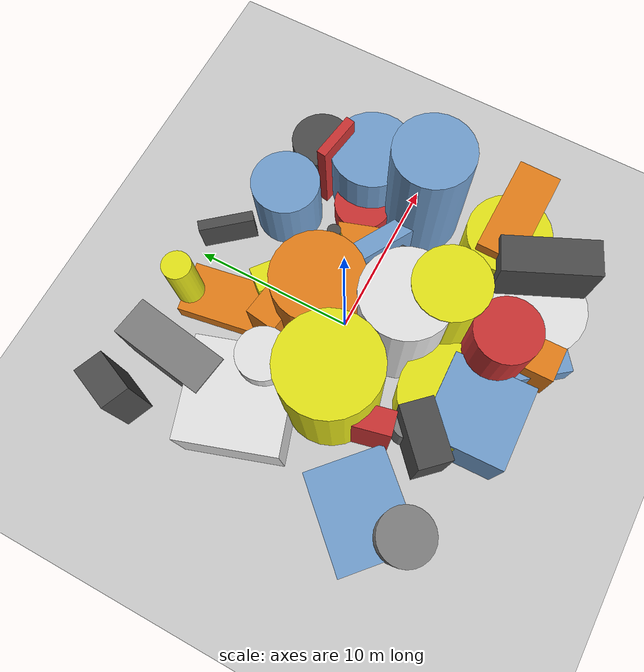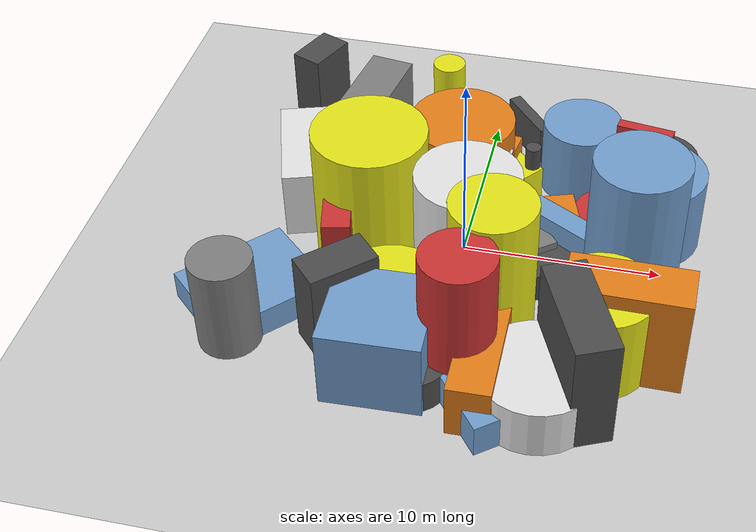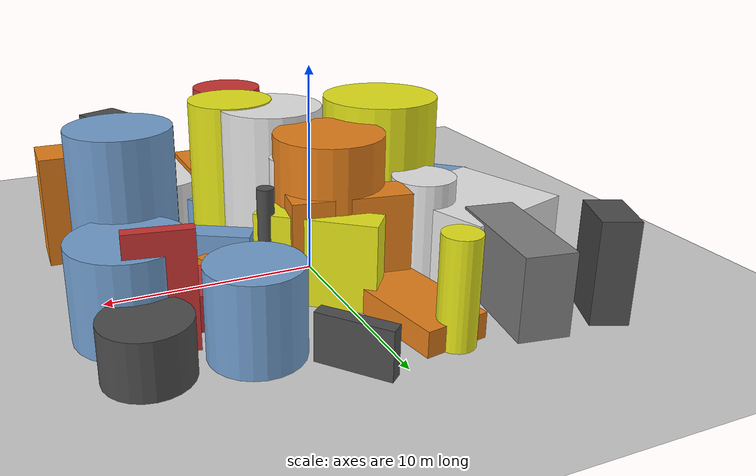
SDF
<?xml version='1.0'?>
<sdf version='1.6'>
  <world name='default'>
    <!-- Sun light -->
    <light name='sun' type='directional'>
      <cast_shadows>1</cast_shadows>
      <pose>0 0 10 0 0 0</pose>
      <diffuse>0.8 0.8 0.8 1</diffuse>
      <specular>0.2 0.2 0.2 1</specular>
      <attenuation>
        <range>1000</range>
        <constant>0.9</constant>
        <linear>0.01</linear>
        <quadratic>0.001</quadratic>
      </attenuation>
      <direction>-0.5 0.1 -0.9</direction>
    </light>

    <!-- Ground plane -->
    <model name='ground_plane'>
      <static>1</static>
      <link name='link'>
        <collision name='collision'>
          <geometry>
            <plane>
              <normal>0 0 1</normal>
              <size>100 100</size>
            </plane>
          </geometry>
          <surface>
            <contact>
              <collide_bitmask>65535</collide_bitmask>
              <ode/>
            </contact>
            <friction>
              <ode>
                <mu>100</mu>
                <mu2>50</mu2>
              </ode>
              <torsional><ode/></torsional>
            </friction>
            <bounce/>
          </surface>
          <max_contacts>10</max_contacts>
        </collision>
        <visual name='visual'>
          <cast_shadows>0</cast_shadows>
          <geometry>
            <plane>
              <normal>0 0 1</normal>
              <size>100 100</size>
            </plane>
          </geometry>
          <material>
            <script>
              <uri>file://media/materials/scripts/gazebo.material</uri>
              <n>Gazebo/Grey</n>
            </script>
          </material>
        </visual>
      </link>
    </model>

    <!-- Environment -->
    <magnetic_field>6e-06 2.3e-05 -4.2e-05</magnetic_field>
    <atmosphere type='adiabatic'/>
    <physics name='default_physics' default='0' type='ode'>
      <gravity>0 0 -9.8</gravity>
      <max_step_size>0.004</max_step_size>
      <real_time_factor>1</real_time_factor>
      <real_time_update_rate>250</real_time_update_rate>
    </physics>
    <scene>
      <ambient>0.4 0.4 0.4 1</ambient>
      <background>0.7 0.7 0.7 1</background>
      <shadows>1</shadows>
    </scene>
    <wind/>
    <spherical_coordinates>
      <surface_model>EARTH_WGS84</surface_model>
      <latitude_deg>0</latitude_deg>
      <longitude_deg>0</longitude_deg>
      <elevation>0</elevation>
      <heading_deg>0</heading_deg>
    </spherical_coordinates>

    <!-- ============ OBSTACLES (46) ============ -->
    <model name='obs_00'>
      <static>1</static>
      <link name='link'>
        <visual name='visual'>
          <geometry>
            <box>
              <size>2.3471 5.8341 3.8289</size>
            </box>
          </geometry>
          <material>
            <script>
              <n>Gazebo/Grey</n>
              <uri>file://media/materials/scripts/gazebo.material</uri>
            </script>
            <ambient>0.5 0.5 0.5 1</ambient>
          </material>
        </visual>
        <collision name='collision'>
          <geometry>
            <box>
              <size>2.3471 5.8341 3.8289</size>
            </box>
          </geometry>
          <max_contacts>10</max_contacts>
          <surface>
            <contact><ode/></contact>
            <bounce/>
            <friction>
              <ode><mu>1</mu><mu2>1</mu2></ode>
              <torsional><ode/></torsional>
            </friction>
          </surface>
        </collision>
      </link>
      <pose>-6.6286 7.3587 1.9145 0 0 2.9891</pose>
    </model>

    <model name='obs_01'>
      <static>1</static>
      <link name='link'>
        <visual name='visual'>
          <geometry>
            <cylinder>
              <radius>0.3870</radius>
              <length>5.3114</length>
            </cylinder>
          </geometry>
          <material>
            <script>
              <n>Gazebo/DarkGrey</n>
              <uri>file://media/materials/scripts/gazebo.material</uri>
            </script>
            <ambient>0.3 0.3 0.3 1</ambient>
          </material>
        </visual>
        <collision name='collision'>
          <geometry>
            <cylinder>
              <radius>0.3870</radius>
              <length>5.3114</length>
            </cylinder>
          </geometry>
          <max_contacts>10</max_contacts>
          <surface>
            <contact><ode/></contact>
            <bounce/>
            <friction>
              <ode><mu>1</mu><mu2>1</mu2></ode>
              <torsional><ode/></torsional>
            </friction>
          </surface>
        </collision>
      </link>
      <pose>3.0119 2.2461 2.6557 0 0 0.6687</pose>
    </model>

    <model name='obs_02'>
      <static>1</static>
      <link name='link'>
        <visual name='visual'>
          <geometry>
            <cylinder>
              <radius>2.8653</radius>
              <length>2.6206</length>
            </cylinder>
          </geometry>
          <material>
            <script>
              <n>Gazebo/White</n>
              <uri>file://media/materials/scripts/gazebo.material</uri>
            </script>
            <ambient>0.9 0.9 0.9 1</ambient>
          </material>
        </visual>
        <collision name='collision'>
          <geometry>
            <cylinder>
              <radius>2.8653</radius>
              <length>2.6206</length>
            </cylinder>
          </geometry>
          <max_contacts>10</max_contacts>
          <surface>
            <contact><ode/></contact>
            <bounce/>
            <friction>
              <ode><mu>1</mu><mu2>1</mu2></ode>
              <torsional><ode/></torsional>
            </friction>
          </surface>
        </collision>
      </link>
      <pose>5.2862 -9.7326 1.3103 0 0 0.0243</pose>
    </model>

    <model name='obs_03'>
      <static>1</static>
      <link name='link'>
        <visual name='visual'>
          <geometry>
            <cylinder>
              <radius>1.9136</radius>
              <length>1.5641</length>
            </cylinder>
          </geometry>
          <material>
            <script>
              <n>Gazebo/DarkGrey</n>
              <uri>file://media/materials/scripts/gazebo.material</uri>
            </script>
            <ambient>0.3 0.3 0.3 1</ambient>
          </material>
        </visual>
        <collision name='collision'>
          <geometry>
            <cylinder>
              <radius>1.9136</radius>
              <length>1.5641</length>
            </cylinder>
          </geometry>
          <max_contacts>10</max_contacts>
          <surface>
            <contact><ode/></contact>
            <bounce/>
            <friction>
              <ode><mu>1</mu><mu2>1</mu2></ode>
              <torsional><ode/></torsional>
            </friction>
          </surface>
        </collision>
      </link>
      <pose>3.7768 -1.1792 0.7820 0 0 2.0333</pose>
    </model>

    <model name='obs_04'>
      <static>1</static>
      <link name='link'>
        <visual name='visual'>
          <geometry>
            <cylinder>
              <radius>0.6515</radius>
              <length>2.6668</length>
            </cylinder>
          </geometry>
          <material>
            <script>
              <n>Gazebo/DarkGrey</n>
              <uri>file://media/materials/scripts/gazebo.material</uri>
            </script>
            <ambient>0.3 0.3 0.3 1</ambient>
          </material>
        </visual>
        <collision name='collision'>
          <geometry>
            <cylinder>
              <radius>0.6515</radius>
              <length>2.6668</length>
            </cylinder>
          </geometry>
          <max_contacts>10</max_contacts>
          <surface>
            <contact><ode/></contact>
            <bounce/>
            <friction>
              <ode><mu>1</mu><mu2>1</mu2></ode>
              <torsional><ode/></torsional>
            </friction>
          </surface>
        </collision>
      </link>
      <pose>-3.5903 -7.8058 1.3334 0 0 1.2509</pose>
    </model>

    <model name='obs_05'>
      <static>1</static>
      <link name='link'>
        <visual name='visual'>
          <geometry>
            <box>
              <size>2.8448 0.5791 5.2964</size>
            </box>
          </geometry>
          <material>
            <script>
              <n>Gazebo/Red</n>
              <uri>file://media/materials/scripts/gazebo.material</uri>
            </script>
            <ambient>0.8 0.2 0.2 1</ambient>
          </material>
        </visual>
        <collision name='collision'>
          <geometry>
            <box>
              <size>2.8448 0.5791 5.2964</size>
            </box>
          </geometry>
          <max_contacts>10</max_contacts>
          <surface>
            <contact><ode/></contact>
            <bounce/>
            <friction>
              <ode><mu>1</mu><mu2>1</mu2></ode>
              <torsional><ode/></torsional>
            </friction>
          </surface>
        </collision>
      </link>
      <pose>8.3150 4.9495 2.6482 0 0 2.9833</pose>
    </model>

    <model name='obs_06'>
      <static>1</static>
      <link name='link'>
        <visual name='visual'>
          <geometry>
            <cylinder>
              <radius>1.8064</radius>
              <length>7.3803</length>
            </cylinder>
          </geometry>
          <material>
            <script>
              <n>Gazebo/Red</n>
              <uri>file://media/materials/scripts/gazebo.material</uri>
            </script>
            <ambient>0.8 0.2 0.2 1</ambient>
          </material>
        </visual>
        <collision name='collision'>
          <geometry>
            <cylinder>
              <radius>1.8064</radius>
              <length>7.3803</length>
            </cylinder>
          </geometry>
          <max_contacts>10</max_contacts>
          <surface>
            <contact><ode/></contact>
            <bounce/>
            <friction>
              <ode><mu>1</mu><mu2>1</mu2></ode>
              <torsional><ode/></torsional>
            </friction>
          </surface>
        </collision>
      </link>
      <pose>1.3868 -8.4732 3.6901 0 0 2.3039</pose>
    </model>

    <model name='obs_07'>
      <static>1</static>
      <link name='link'>
        <visual name='visual'>
          <geometry>
            <box>
              <size>1.9080 3.4863 4.8302</size>
            </box>
          </geometry>
          <material>
            <script>
              <n>Gazebo/DarkGrey</n>
              <uri>file://media/materials/scripts/gazebo.material</uri>
            </script>
            <ambient>0.3 0.3 0.3 1</ambient>
          </material>
        </visual>
        <collision name='collision'>
          <geometry>
            <box>
              <size>1.9080 3.4863 4.8302</size>
            </box>
          </geometry>
          <max_contacts>10</max_contacts>
          <surface>
            <contact><ode/></contact>
            <bounce/>
            <friction>
              <ode><mu>1</mu><mu2>1</mu2></ode>
              <torsional><ode/></torsional>
            </friction>
          </surface>
        </collision>
      </link>
      <pose>-4.5793 -7.1283 2.4151 0 0 2.3236</pose>
    </model>

    <model name='obs_08'>
      <static>1</static>
      <link name='link'>
        <visual name='visual'>
          <geometry>
            <box>
              <size>5.8615 2.0772 2.8869</size>
            </box>
          </geometry>
          <material>
            <script>
              <n>Gazebo/Orange</n>
              <uri>file://media/materials/scripts/gazebo.material</uri>
            </script>
            <ambient>0.9 0.5 0.1 1</ambient>
          </material>
        </visual>
        <collision name='collision'>
          <geometry>
            <box>
              <size>5.8615 2.0772 2.8869</size>
            </box>
          </geometry>
          <max_contacts>10</max_contacts>
          <surface>
            <contact><ode/></contact>
            <bounce/>
            <friction>
              <ode><mu>1</mu><mu2>1</mu2></ode>
              <torsional><ode/></torsional>
            </friction>
          </surface>
        </collision>
      </link>
      <pose>2.5663 -9.2042 1.4435 0 0 1.5869</pose>
    </model>

    <model name='obs_09'>
      <static>1</static>
      <link name='link'>
        <visual name='visual'>
          <geometry>
            <box>
              <size>2.4498 5.7928 5.4341</size>
            </box>
          </geometry>
          <material>
            <script>
              <n>Gazebo/Orange</n>
              <uri>file://media/materials/scripts/gazebo.material</uri>
            </script>
            <ambient>0.9 0.5 0.1 1</ambient>
          </material>
        </visual>
        <collision name='collision'>
          <geometry>
            <box>
              <size>2.4498 5.7928 5.4341</size>
            </box>
          </geometry>
          <max_contacts>10</max_contacts>
          <surface>
            <contact><ode/></contact>
            <bounce/>
            <friction>
              <ode><mu>1</mu><mu2>1</mu2></ode>
              <torsional><ode/></torsional>
            </friction>
          </surface>
        </collision>
      </link>
      <pose>8.7857 -6.3315 2.7171 0 0 1.5583</pose>
    </model>

    <model name='obs_10'>
      <static>1</static>
      <link name='link'>
        <visual name='visual'>
          <geometry>
            <box>
              <size>3.9438 1.1963 2.8125</size>
            </box>
          </geometry>
          <material>
            <script>
              <n>Gazebo/Blue</n>
              <uri>file://media/materials/scripts/gazebo.material</uri>
            </script>
            <ambient>0.447 0.624 0.812 1</ambient>
          </material>
        </visual>
        <collision name='collision'>
          <geometry>
            <box>
              <size>3.9438 1.1963 2.8125</size>
            </box>
          </geometry>
          <max_contacts>10</max_contacts>
          <surface>
            <contact><ode/></contact>
            <bounce/>
            <friction>
              <ode><mu>1</mu><mu2>1</mu2></ode>
              <torsional><ode/></torsional>
            </friction>
          </surface>
        </collision>
      </link>
      <pose>4.9855 0.1100 1.4063 0 0 2.6148</pose>
    </model>

    <model name='obs_11'>
      <static>1</static>
      <link name='link'>
        <visual name='visual'>
          <geometry>
            <cylinder>
              <radius>2.8260</radius>
              <length>7.9061</length>
            </cylinder>
          </geometry>
          <material>
            <script>
              <n>Gazebo/Yellow</n>
              <uri>file://media/materials/scripts/gazebo.material</uri>
            </script>
            <ambient>0.9 0.9 0.1 1</ambient>
          </material>
        </visual>
        <collision name='collision'>
          <geometry>
            <cylinder>
              <radius>2.8260</radius>
              <length>7.9061</length>
            </cylinder>
          </geometry>
          <max_contacts>10</max_contacts>
          <surface>
            <contact><ode/></contact>
            <bounce/>
            <friction>
              <ode><mu>1</mu><mu2>1</mu2></ode>
              <torsional><ode/></torsional>
            </friction>
          </surface>
        </collision>
      </link>
      <pose>-4.3656 -1.4490 3.9531 0 0 0.4973</pose>
    </model>

    <model name='obs_12'>
      <static>1</static>
      <link name='link'>
        <visual name='visual'>
          <geometry>
            <cylinder>
              <radius>2.4323</radius>
              <length>4.6815</length>
            </cylinder>
          </geometry>
          <material>
            <script>
              <n>Gazebo/Yellow</n>
              <uri>file://media/materials/scripts/gazebo.material</uri>
            </script>
            <ambient>0.9 0.9 0.1 1</ambient>
          </material>
        </visual>
        <collision name='collision'>
          <geometry>
            <cylinder>
              <radius>2.4323</radius>
              <length>4.6815</length>
            </cylinder>
          </geometry>
          <max_contacts>10</max_contacts>
          <surface>
            <contact><ode/></contact>
            <bounce/>
            <friction>
              <ode><mu>1</mu><mu2>1</mu2></ode>
              <torsional><ode/></torsional>
            </friction>
          </surface>
        </collision>
      </link>
      <pose>7.6779 -6.3989 2.3408 0 0 0.9923</pose>
    </model>

    <model name='obs_13'>
      <static>1</static>
      <link name='link'>
        <visual name='visual'>
          <geometry>
            <box>
              <size>4.5849 4.5524 1.7205</size>
            </box>
          </geometry>
          <material>
            <script>
              <n>Gazebo/Blue</n>
              <uri>file://media/materials/scripts/gazebo.material</uri>
            </script>
            <ambient>0.447 0.624 0.812 1</ambient>
          </material>
        </visual>
        <collision name='collision'>
          <geometry>
            <box>
              <size>4.5849 4.5524 1.7205</size>
            </box>
          </geometry>
          <max_contacts>10</max_contacts>
          <surface>
            <contact><ode/></contact>
            <bounce/>
            <friction>
              <ode><mu>1</mu><mu2>1</mu2></ode>
              <torsional><ode/></torsional>
            </friction>
          </surface>
        </collision>
      </link>
      <pose>3.5027 -9.9084 0.8602 0 0 0.6640</pose>
    </model>

    <model name='obs_14'>
      <static>1</static>
      <link name='link'>
        <visual name='visual'>
          <geometry>
            <cylinder>
              <radius>2.3495</radius>
              <length>7.8467</length>
            </cylinder>
          </geometry>
          <material>
            <script>
              <n>Gazebo/Blue</n>
              <uri>file://media/materials/scripts/gazebo.material</uri>
            </script>
            <ambient>0.447 0.624 0.812 1</ambient>
          </material>
        </visual>
        <collision name='collision'>
          <geometry>
            <cylinder>
              <radius>2.3495</radius>
              <length>7.8467</length>
            </cylinder>
          </geometry>
          <max_contacts>10</max_contacts>
          <surface>
            <contact><ode/></contact>
            <bounce/>
            <friction>
              <ode><mu>1</mu><mu2>1</mu2></ode>
              <torsional><ode/></torsional>
            </friction>
          </surface>
        </collision>
      </link>
      <pose>8.5401 -0.9317 3.9233 0 0 1.9699</pose>
    </model>

    <model name='obs_15'>
      <static>1</static>
      <link name='link'>
        <visual name='visual'>
          <geometry>
            <cylinder>
              <radius>0.2005</radius>
              <length>1.4333</length>
            </cylinder>
          </geometry>
          <material>
            <script>
              <n>Gazebo/Orange</n>
              <uri>file://media/materials/scripts/gazebo.material</uri>
            </script>
            <ambient>0.9 0.5 0.1 1</ambient>
          </material>
        </visual>
        <collision name='collision'>
          <geometry>
            <cylinder>
              <radius>0.2005</radius>
              <length>1.4333</length>
            </cylinder>
          </geometry>
          <max_contacts>10</max_contacts>
          <surface>
            <contact><ode/></contact>
            <bounce/>
            <friction>
              <ode><mu>1</mu><mu2>1</mu2></ode>
              <torsional><ode/></torsional>
            </friction>
          </surface>
        </collision>
      </link>
      <pose>-6.8158 -1.3313 0.7166 0 0 2.4288</pose>
    </model>

    <model name='obs_16'>
      <static>1</static>
      <link name='link'>
        <visual name='visual'>
          <geometry>
            <cylinder>
              <radius>1.6257</radius>
              <length>1.7474</length>
            </cylinder>
          </geometry>
          <material>
            <script>
              <n>Gazebo/DarkGrey</n>
              <uri>file://media/materials/scripts/gazebo.material</uri>
            </script>
            <ambient>0.3 0.3 0.3 1</ambient>
          </material>
        </visual>
        <collision name='collision'>
          <geometry>
            <cylinder>
              <radius>1.6257</radius>
              <length>1.7474</length>
            </cylinder>
          </geometry>
          <max_contacts>10</max_contacts>
          <surface>
            <contact><ode/></contact>
            <bounce/>
            <friction>
              <ode><mu>1</mu><mu2>1</mu2></ode>
              <torsional><ode/></torsional>
            </friction>
          </surface>
        </collision>
      </link>
      <pose>-0.3946 -9.7062 0.8737 0 0 1.3451</pose>
    </model>

    <model name='obs_17'>
      <static>1</static>
      <link name='link'>
        <visual name='visual'>
          <geometry>
            <box>
              <size>5.5104 1.8375 4.8372</size>
            </box>
          </geometry>
          <material>
            <script>
              <n>Gazebo/Orange</n>
              <uri>file://media/materials/scripts/gazebo.material</uri>
            </script>
            <ambient>0.9 0.5 0.1 1</ambient>
          </material>
        </visual>
        <collision name='collision'>
          <geometry>
            <box>
              <size>5.5104 1.8375 4.8372</size>
            </box>
          </geometry>
          <max_contacts>10</max_contacts>
          <surface>
            <contact><ode/></contact>
            <bounce/>
            <friction>
              <ode><mu>1</mu><mu2>1</mu2></ode>
              <torsional><ode/></torsional>
            </friction>
          </surface>
        </collision>
      </link>
      <pose>-0.6026 2.9928 2.4186 0 0 2.9959</pose>
    </model>

    <model name='obs_18'>
      <static>1</static>
      <link name='link'>
        <visual name='visual'>
          <geometry>
            <cylinder>
              <radius>2.0545</radius>
              <length>3.9909</length>
            </cylinder>
          </geometry>
          <material>
            <script>
              <n>Gazebo/Blue</n>
              <uri>file://media/materials/scripts/gazebo.material</uri>
            </script>
            <ambient>0.447 0.624 0.812 1</ambient>
          </material>
        </visual>
        <collision name='collision'>
          <geometry>
            <cylinder>
              <radius>2.0545</radius>
              <length>3.9909</length>
            </cylinder>
          </geometry>
          <max_contacts>10</max_contacts>
          <surface>
            <contact><ode/></contact>
            <bounce/>
            <friction>
              <ode><mu>1</mu><mu2>1</mu2></ode>
              <torsional><ode/></torsional>
            </friction>
          </surface>
        </collision>
      </link>
      <pose>4.9934 6.5635 1.9954 0 0 0.3804</pose>
    </model>

    <model name='obs_19'>
      <static>1</static>
      <link name='link'>
        <visual name='visual'>
          <geometry>
            <box>
              <size>5.9453 3.0777 1.1798</size>
            </box>
          </geometry>
          <material>
            <script>
              <n>Gazebo/Orange</n>
              <uri>file://media/materials/scripts/gazebo.material</uri>
            </script>
            <ambient>0.9 0.5 0.1 1</ambient>
          </material>
        </visual>
        <collision name='collision'>
          <geometry>
            <box>
              <size>5.9453 3.0777 1.1798</size>
            </box>
          </geometry>
          <max_contacts>10</max_contacts>
          <surface>
            <contact><ode/></contact>
            <bounce/>
            <friction>
              <ode><mu>1</mu><mu2>1</mu2></ode>
              <torsional><ode/></torsional>
            </friction>
          </surface>
        </collision>
      </link>
      <pose>-2.0852 6.4183 0.5899 0 0 1.7364</pose>
    </model>

    <model name='obs_20'>
      <static>1</static>
      <link name='link'>
        <visual name='visual'>
          <geometry>
            <cylinder>
              <radius>0.7758</radius>
              <length>6.0496</length>
            </cylinder>
          </geometry>
          <material>
            <script>
              <n>Gazebo/White</n>
              <uri>file://media/materials/scripts/gazebo.material</uri>
            </script>
            <ambient>0.9 0.9 0.9 1</ambient>
          </material>
        </visual>
        <collision name='collision'>
          <geometry>
            <cylinder>
              <radius>0.7758</radius>
              <length>6.0496</length>
            </cylinder>
          </geometry>
          <max_contacts>10</max_contacts>
          <surface>
            <contact><ode/></contact>
            <bounce/>
            <friction>
              <ode><mu>1</mu><mu2>1</mu2></ode>
              <torsional><ode/></torsional>
            </friction>
          </surface>
        </collision>
      </link>
      <pose>1.4307 0.6644 3.0248 0 0 0.8408</pose>
    </model>

    <model name='obs_21'>
      <static>1</static>
      <link name='link'>
        <visual name='visual'>
          <geometry>
            <cylinder>
              <radius>1.7577</radius>
              <length>1.6776</length>
            </cylinder>
          </geometry>
          <material>
            <script>
              <n>Gazebo/Red</n>
              <uri>file://media/materials/scripts/gazebo.material</uri>
            </script>
            <ambient>0.8 0.2 0.2 1</ambient>
          </material>
        </visual>
        <collision name='collision'>
          <geometry>
            <cylinder>
              <radius>1.7577</radius>
              <length>1.6776</length>
            </cylinder>
          </geometry>
          <max_contacts>10</max_contacts>
          <surface>
            <contact><ode/></contact>
            <bounce/>
            <friction>
              <ode><mu>1</mu><mu2>1</mu2></ode>
              <torsional><ode/></torsional>
            </friction>
          </surface>
        </collision>
      </link>
      <pose>6.9948 2.4233 0.8388 0 0 0.4969</pose>
    </model>

    <model name='obs_22'>
      <static>1</static>
      <link name='link'>
        <visual name='visual'>
          <geometry>
            <box>
              <size>3.3657 0.6505 2.1932</size>
            </box>
          </geometry>
          <material>
            <script>
              <n>Gazebo/DarkGrey</n>
              <uri>file://media/materials/scripts/gazebo.material</uri>
            </script>
            <ambient>0.3 0.3 0.3 1</ambient>
          </material>
        </visual>
        <collision name='collision'>
          <geometry>
            <box>
              <size>3.3657 0.6505 2.1932</size>
            </box>
          </geometry>
          <max_contacts>10</max_contacts>
          <surface>
            <contact><ode/></contact>
            <bounce/>
            <friction>
              <ode><mu>1</mu><mu2>1</mu2></ode>
              <torsional><ode/></torsional>
            </friction>
          </surface>
        </collision>
      </link>
      <pose>1.8447 9.0956 1.0966 0 0 2.2646</pose>
    </model>

    <model name='obs_23'>
      <static>1</static>
      <link name='link'>
        <visual name='visual'>
          <geometry>
            <cylinder>
              <radius>2.3326</radius>
              <length>2.8486</length>
            </cylinder>
          </geometry>
          <material>
            <script>
              <n>Gazebo/Red</n>
              <uri>file://media/materials/scripts/gazebo.material</uri>
            </script>
            <ambient>0.8 0.2 0.2 1</ambient>
          </material>
        </visual>
        <collision name='collision'>
          <geometry>
            <cylinder>
              <radius>2.3326</radius>
              <length>2.8486</length>
            </cylinder>
          </geometry>
          <max_contacts>10</max_contacts>
          <surface>
            <contact><ode/></contact>
            <bounce/>
            <friction>
              <ode><mu>1</mu><mu2>1</mu2></ode>
              <torsional><ode/></torsional>
            </friction>
          </surface>
        </collision>
      </link>
      <pose>-0.1119 -7.1115 1.4243 0 0 0.5906</pose>
    </model>

    <model name='obs_24'>
      <static>1</static>
      <link name='link'>
        <visual name='visual'>
          <geometry>
            <cylinder>
              <radius>2.5438</radius>
              <length>4.2651</length>
            </cylinder>
          </geometry>
          <material>
            <script>
              <n>Gazebo/Blue</n>
              <uri>file://media/materials/scripts/gazebo.material</uri>
            </script>
            <ambient>0.447 0.624 0.812 1</ambient>
          </material>
        </visual>
        <collision name='collision'>
          <geometry>
            <cylinder>
              <radius>2.5438</radius>
              <length>4.2651</length>
            </cylinder>
          </geometry>
          <max_contacts>10</max_contacts>
          <surface>
            <contact><ode/></contact>
            <bounce/>
            <friction>
              <ode><mu>1</mu><mu2>1</mu2></ode>
              <torsional><ode/></torsional>
            </friction>
          </surface>
        </collision>
      </link>
      <pose>9.1755 2.9518 2.1325 0 0 0.1153</pose>
    </model>

    <model name='obs_25'>
      <static>1</static>
      <link name='link'>
        <visual name='visual'>
          <geometry>
            <cylinder>
              <radius>1.5366</radius>
              <length>5.0799</length>
            </cylinder>
          </geometry>
          <material>
            <script>
              <n>Gazebo/Grey</n>
              <uri>file://media/materials/scripts/gazebo.material</uri>
            </script>
            <ambient>0.5 0.5 0.5 1</ambient>
          </material>
        </visual>
        <collision name='collision'>
          <geometry>
            <cylinder>
              <radius>1.5366</radius>
              <length>5.0799</length>
            </cylinder>
          </geometry>
          <max_contacts>10</max_contacts>
          <surface>
            <contact><ode/></contact>
            <bounce/>
            <friction>
              <ode><mu>1</mu><mu2>1</mu2></ode>
              <torsional><ode/></torsional>
            </friction>
          </surface>
        </collision>
      </link>
      <pose>-9.6462 -8.4928 2.5399 0 0 1.5191</pose>
    </model>

    <model name='obs_26'>
      <static>1</static>
      <link name='link'>
        <visual name='visual'>
          <geometry>
            <cylinder>
              <radius>0.1669</radius>
              <length>4.6242</length>
            </cylinder>
          </geometry>
          <material>
            <script>
              <n>Gazebo/White</n>
              <uri>file://media/materials/scripts/gazebo.material</uri>
            </script>
            <ambient>0.9 0.9 0.9 1</ambient>
          </material>
        </visual>
        <collision name='collision'>
          <geometry>
            <cylinder>
              <radius>0.1669</radius>
              <length>4.6242</length>
            </cylinder>
          </geometry>
          <max_contacts>10</max_contacts>
          <surface>
            <contact><ode/></contact>
            <bounce/>
            <friction>
              <ode><mu>1</mu><mu2>1</mu2></ode>
              <torsional><ode/></torsional>
            </friction>
          </surface>
        </collision>
      </link>
      <pose>-1.9136 -1.9970 2.3121 0 0 0.9216</pose>
    </model>

    <model name='obs_27'>
      <static>1</static>
      <link name='link'>
        <visual name='visual'>
          <geometry>
            <cylinder>
              <radius>0.8490</radius>
              <length>2.6448</length>
            </cylinder>
          </geometry>
          <material>
            <script>
              <n>Gazebo/Grey</n>
              <uri>file://media/materials/scripts/gazebo.material</uri>
            </script>
            <ambient>0.5 0.5 0.5 1</ambient>
          </material>
        </visual>
        <collision name='collision'>
          <geometry>
            <cylinder>
              <radius>0.8490</radius>
              <length>2.6448</length>
            </cylinder>
          </geometry>
          <max_contacts>10</max_contacts>
          <surface>
            <contact><ode/></contact>
            <bounce/>
            <friction>
              <ode><mu>1</mu><mu2>1</mu2></ode>
              <torsional><ode/></torsional>
            </friction>
          </surface>
        </collision>
      </link>
      <pose>-4.1769 -6.0680 1.3224 0 0 2.0721</pose>
    </model>

    <model name='obs_28'>
      <static>1</static>
      <link name='link'>
        <visual name='visual'>
          <geometry>
            <box>
              <size>4.7370 4.8211 4.1842</size>
            </box>
          </geometry>
          <material>
            <script>
              <n>Gazebo/Blue</n>
              <uri>file://media/materials/scripts/gazebo.material</uri>
            </script>
            <ambient>0.447 0.624 0.812 1</ambient>
          </material>
        </visual>
        <collision name='collision'>
          <geometry>
            <box>
              <size>4.7370 4.8211 4.1842</size>
            </box>
          </geometry>
          <max_contacts>10</max_contacts>
          <surface>
            <contact><ode/></contact>
            <bounce/>
            <friction>
              <ode><mu>1</mu><mu2>1</mu2></ode>
              <torsional><ode/></torsional>
            </friction>
          </surface>
        </collision>
      </link>
      <pose>-2.0877 -9.1139 2.0921 0 0 1.6029</pose>
    </model>

    <model name='obs_29'>
      <static>1</static>
      <link name='link'>
        <visual name='visual'>
          <geometry>
            <box>
              <size>1.3647 2.2079 5.2138</size>
            </box>
          </geometry>
          <material>
            <script>
              <n>Gazebo/Red</n>
              <uri>file://media/materials/scripts/gazebo.material</uri>
            </script>
            <ambient>0.8 0.2 0.2 1</ambient>
          </material>
        </visual>
        <collision name='collision'>
          <geometry>
            <box>
              <size>1.3647 2.2079 5.2138</size>
            </box>
          </geometry>
          <max_contacts>10</max_contacts>
          <surface>
            <contact><ode/></contact>
            <bounce/>
            <friction>
              <ode><mu>1</mu><mu2>1</mu2></ode>
              <torsional><ode/></torsional>
            </friction>
          </surface>
        </collision>
      </link>
      <pose>-5.2568 -4.4575 2.6069 0 0 0.2210</pose>
    </model>

    <model name='obs_30'>
      <static>1</static>
      <link name='link'>
        <visual name='visual'>
          <geometry>
            <box>
              <size>3.4869 2.7279 3.0175</size>
            </box>
          </geometry>
          <material>
            <script>
              <n>Gazebo/Grey</n>
              <uri>file://media/materials/scripts/gazebo.material</uri>
            </script>
            <ambient>0.5 0.5 0.5 1</ambient>
          </material>
        </visual>
        <collision name='collision'>
          <geometry>
            <box>
              <size>3.4869 2.7279 3.0175</size>
            </box>
          </geometry>
          <max_contacts>10</max_contacts>
          <surface>
            <contact><ode/></contact>
            <bounce/>
            <friction>
              <ode><mu>1</mu><mu2>1</mu2></ode>
              <torsional><ode/></torsional>
            </friction>
          </surface>
        </collision>
      </link>
      <pose>-2.1855 1.5316 1.5087 0 0 3.1012</pose>
    </model>

    <model name='obs_31'>
      <static>1</static>
      <link name='link'>
        <visual name='visual'>
          <geometry>
            <box>
              <size>5.8813 4.7620 1.4995</size>
            </box>
          </geometry>
          <material>
            <script>
              <n>Gazebo/Blue</n>
              <uri>file://media/materials/scripts/gazebo.material</uri>
            </script>
            <ambient>0.447 0.624 0.812 1</ambient>
          </material>
        </visual>
        <collision name='collision'>
          <geometry>
            <box>
              <size>5.8813 4.7620 1.4995</size>
            </box>
          </geometry>
          <max_contacts>10</max_contacts>
          <surface>
            <contact><ode/></contact>
            <bounce/>
            <friction>
              <ode><mu>1</mu><mu2>1</mu2></ode>
              <torsional><ode/></torsional>
            </friction>
          </surface>
        </collision>
      </link>
      <pose>-9.3508 -5.9294 0.7497 0 0 0.8232</pose>
    </model>

    <model name='obs_32'>
      <static>1</static>
      <link name='link'>
        <visual name='visual'>
          <geometry>
            <box>
              <size>1.3217 2.4533 1.9556</size>
            </box>
          </geometry>
          <material>
            <script>
              <n>Gazebo/Grey</n>
              <uri>file://media/materials/scripts/gazebo.material</uri>
            </script>
            <ambient>0.5 0.5 0.5 1</ambient>
          </material>
        </visual>
        <collision name='collision'>
          <geometry>
            <box>
              <size>1.3217 2.4533 1.9556</size>
            </box>
          </geometry>
          <max_contacts>10</max_contacts>
          <surface>
            <contact><ode/></contact>
            <bounce/>
            <friction>
              <ode><mu>1</mu><mu2>1</mu2></ode>
              <torsional><ode/></torsional>
            </friction>
          </surface>
        </collision>
      </link>
      <pose>3.5777 -0.1927 0.9778 0 0 0.6488</pose>
    </model>

    <model name='obs_33'>
      <static>1</static>
      <link name='link'>
        <visual name='visual'>
          <geometry>
            <box>
              <size>1.6931 2.6142 4.7558</size>
            </box>
          </geometry>
          <material>
            <script>
              <n>Gazebo/DarkGrey</n>
              <uri>file://media/materials/scripts/gazebo.material</uri>
            </script>
            <ambient>0.3 0.3 0.3 1</ambient>
          </material>
        </visual>
        <collision name='collision'>
          <geometry>
            <box>
              <size>1.6931 2.6142 4.7558</size>
            </box>
          </geometry>
          <max_contacts>10</max_contacts>
          <surface>
            <contact><ode/></contact>
            <bounce/>
            <friction>
              <ode><mu>1</mu><mu2>1</mu2></ode>
              <torsional><ode/></torsional>
            </friction>
          </surface>
        </collision>
      </link>
      <pose>-9.9855 9.1502 2.3779 0 0 2.7401</pose>
    </model>

    <model name='obs_34'>
      <static>1</static>
      <link name='link'>
        <visual name='visual'>
          <geometry>
            <cylinder>
              <radius>2.5579</radius>
              <length>7.5005</length>
            </cylinder>
          </geometry>
          <material>
            <script>
              <n>Gazebo/White</n>
              <uri>file://media/materials/scripts/gazebo.material</uri>
            </script>
            <ambient>0.9 0.9 0.9 1</ambient>
          </material>
        </visual>
        <collision name='collision'>
          <geometry>
            <cylinder>
              <radius>2.5579</radius>
              <length>7.5005</length>
            </cylinder>
          </geometry>
          <max_contacts>10</max_contacts>
          <surface>
            <contact><ode/></contact>
            <bounce/>
            <friction>
              <ode><mu>1</mu><mu2>1</mu2></ode>
              <torsional><ode/></torsional>
            </friction>
          </surface>
        </collision>
      </link>
      <pose>0.7714 -3.1841 3.7502 0 0 2.2397</pose>
    </model>

    <model name='obs_35'>
      <static>1</static>
      <link name='link'>
        <visual name='visual'>
          <geometry>
            <box>
              <size>2.1009 5.4900 5.9672</size>
            </box>
          </geometry>
          <material>
            <script>
              <n>Gazebo/DarkGrey</n>
              <uri>file://media/materials/scripts/gazebo.material</uri>
            </script>
            <ambient>0.3 0.3 0.3 1</ambient>
          </material>
        </visual>
        <collision name='collision'>
          <geometry>
            <box>
              <size>2.1009 5.4900 5.9672</size>
            </box>
          </geometry>
          <max_contacts>10</max_contacts>
          <surface>
            <contact><ode/></contact>
            <bounce/>
            <friction>
              <ode><mu>1</mu><mu2>1</mu2></ode>
              <torsional><ode/></torsional>
            </friction>
          </surface>
        </collision>
      </link>
      <pose>6.8732 -8.9314 2.9836 0 0 0.4216</pose>
    </model>

    <model name='obs_36'>
      <static>1</static>
      <link name='link'>
        <visual name='visual'>
          <geometry>
            <cylinder>
              <radius>2.5667</radius>
              <length>7.1735</length>
            </cylinder>
          </geometry>
          <material>
            <script>
              <n>Gazebo/Orange</n>
              <uri>file://media/materials/scripts/gazebo.material</uri>
            </script>
            <ambient>0.9 0.5 0.1 1</ambient>
          </material>
        </visual>
        <collision name='collision'>
          <geometry>
            <cylinder>
              <radius>2.5667</radius>
              <length>7.1735</length>
            </cylinder>
          </geometry>
          <max_contacts>10</max_contacts>
          <surface>
            <contact><ode/></contact>
            <bounce/>
            <friction>
              <ode><mu>1</mu><mu2>1</mu2></ode>
              <torsional><ode/></torsional>
            </friction>
          </surface>
        </collision>
      </link>
      <pose>-0.4000 1.3398 3.5868 0 0 0.4410</pose>
    </model>

    <model name='obs_37'>
      <static>1</static>
      <link name='link'>
        <visual name='visual'>
          <geometry>
            <box>
              <size>0.5856 4.1797 1.7286</size>
            </box>
          </geometry>
          <material>
            <script>
              <n>Gazebo/Yellow</n>
              <uri>file://media/materials/scripts/gazebo.material</uri>
            </script>
            <ambient>0.9 0.9 0.1 1</ambient>
          </material>
        </visual>
        <collision name='collision'>
          <geometry>
            <box>
              <size>0.5856 4.1797 1.7286</size>
            </box>
          </geometry>
          <max_contacts>10</max_contacts>
          <surface>
            <contact><ode/></contact>
            <bounce/>
            <friction>
              <ode><mu>1</mu><mu2>1</mu2></ode>
              <torsional><ode/></torsional>
            </friction>
          </surface>
        </collision>
      </link>
      <pose>-2.9437 0.3646 0.8643 0 0 0.6744</pose>
    </model>

    <model name='obs_38'>
      <static>1</static>
      <link name='link'>
        <visual name='visual'>
          <geometry>
            <cylinder>
              <radius>2.9326</radius>
              <length>3.7849</length>
            </cylinder>
          </geometry>
          <material>
            <script>
              <n>Gazebo/Yellow</n>
              <uri>file://media/materials/scripts/gazebo.material</uri>
            </script>
            <ambient>0.9 0.9 0.1 1</ambient>
          </material>
        </visual>
        <collision name='collision'>
          <geometry>
            <cylinder>
              <radius>2.9326</radius>
              <length>3.7849</length>
            </cylinder>
          </geometry>
          <max_contacts>10</max_contacts>
          <surface>
            <contact><ode/></contact>
            <bounce/>
            <friction>
              <ode><mu>1</mu><mu2>1</mu2></ode>
              <torsional><ode/></torsional>
            </friction>
          </surface>
        </collision>
      </link>
      <pose>-1.9416 -7.4644 1.8924 0 0 2.9218</pose>
    </model>

    <model name='obs_39'>
      <static>1</static>
      <link name='link'>
        <visual name='visual'>
          <geometry>
            <box>
              <size>5.1989 2.4405 1.9334</size>
            </box>
          </geometry>
          <material>
            <script>
              <n>Gazebo/Orange</n>
              <uri>file://media/materials/scripts/gazebo.material</uri>
            </script>
            <ambient>0.9 0.5 0.1 1</ambient>
          </material>
        </visual>
        <collision name='collision'>
          <geometry>
            <box>
              <size>5.1989 2.4405 1.9334</size>
            </box>
          </geometry>
          <max_contacts>10</max_contacts>
          <surface>
            <contact><ode/></contact>
            <bounce/>
            <friction>
              <ode><mu>1</mu><mu2>1</mu2></ode>
              <torsional><ode/></torsional>
            </friction>
          </surface>
        </collision>
      </link>
      <pose>3.0096 1.1086 0.9667 0 0 0.3190</pose>
    </model>

    <model name='obs_40'>
      <static>1</static>
      <link name='link'>
        <visual name='visual'>
          <geometry>
            <box>
              <size>5.5961 1.5204 4.1341</size>
            </box>
          </geometry>
          <material>
            <script>
              <n>Gazebo/Yellow</n>
              <uri>file://media/materials/scripts/gazebo.material</uri>
            </script>
            <ambient>0.9 0.9 0.1 1</ambient>
          </material>
        </visual>
        <collision name='collision'>
          <geometry>
            <box>
              <size>5.5961 1.5204 4.1341</size>
            </box>
          </geometry>
          <max_contacts>10</max_contacts>
          <surface>
            <contact><ode/></contact>
            <bounce/>
            <friction>
              <ode><mu>1</mu><mu2>1</mu2></ode>
              <torsional><ode/></torsional>
            </friction>
          </surface>
        </collision>
      </link>
      <pose>0.9111 3.2784 2.0670 0 0 2.4600</pose>
    </model>

    <model name='obs_41'>
      <static>1</static>
      <link name='link'>
        <visual name='visual'>
          <geometry>
            <cylinder>
              <radius>2.1127</radius>
              <length>7.5646</length>
            </cylinder>
          </geometry>
          <material>
            <script>
              <n>Gazebo/Yellow</n>
              <uri>file://media/materials/scripts/gazebo.material</uri>
            </script>
            <ambient>0.9 0.9 0.1 1</ambient>
          </material>
        </visual>
        <collision name='collision'>
          <geometry>
            <cylinder>
              <radius>2.1127</radius>
              <length>7.5646</length>
            </cylinder>
          </geometry>
          <max_contacts>10</max_contacts>
          <surface>
            <contact><ode/></contact>
            <bounce/>
            <friction>
              <ode><mu>1</mu><mu2>1</mu2></ode>
              <torsional><ode/></torsional>
            </friction>
          </surface>
        </collision>
      </link>
      <pose>2.2886 -4.9514 3.7823 0 0 1.7031</pose>
    </model>

    <model name='obs_42'>
      <static>1</static>
      <link name='link'>
        <visual name='visual'>
          <geometry>
            <box>
              <size>5.8350 5.9058 3.7189</size>
            </box>
          </geometry>
          <material>
            <script>
              <n>Gazebo/White</n>
              <uri>file://media/materials/scripts/gazebo.material</uri>
            </script>
            <ambient>0.9 0.9 0.9 1</ambient>
          </material>
        </visual>
        <collision name='collision'>
          <geometry>
            <box>
              <size>5.8350 5.9058 3.7189</size>
            </box>
          </geometry>
          <max_contacts>10</max_contacts>
          <surface>
            <contact><ode/></contact>
            <bounce/>
            <friction>
              <ode><mu>1</mu><mu2>1</mu2></ode>
              <torsional><ode/></torsional>
            </friction>
          </surface>
        </collision>
      </link>
      <pose>-7.2591 2.7425 1.8595 0 0 1.8854</pose>
    </model>

    <model name='obs_43'>
      <static>1</static>
      <link name='link'>
        <visual name='visual'>
          <geometry>
            <cylinder>
              <radius>1.5296</radius>
              <length>4.8430</length>
            </cylinder>
          </geometry>
          <material>
            <script>
              <n>Gazebo/White</n>
              <uri>file://media/materials/scripts/gazebo.material</uri>
            </script>
            <ambient>0.9 0.9 0.9 1</ambient>
          </material>
        </visual>
        <collision name='collision'>
          <geometry>
            <cylinder>
              <radius>1.5296</radius>
              <length>4.8430</length>
            </cylinder>
          </geometry>
          <max_contacts>10</max_contacts>
          <surface>
            <contact><ode/></contact>
            <bounce/>
            <friction>
              <ode><mu>1</mu><mu2>1</mu2></ode>
              <torsional><ode/></torsional>
            </friction>
          </surface>
        </collision>
      </link>
      <pose>-4.8373 2.3448 2.4215 0 0 1.6338</pose>
    </model>

    <model name='obs_44'>
      <static>1</static>
      <link name='link'>
        <visual name='visual'>
          <geometry>
            <cylinder>
              <radius>1.8725</radius>
              <length>2.5102</length>
            </cylinder>
          </geometry>
          <material>
            <script>
              <n>Gazebo/DarkGrey</n>
              <uri>file://media/materials/scripts/gazebo.material</uri>
            </script>
            <ambient>0.3 0.3 0.3 1</ambient>
          </material>
        </visual>
        <collision name='collision'>
          <geometry>
            <cylinder>
              <radius>1.8725</radius>
              <length>2.5102</length>
            </cylinder>
          </geometry>
          <max_contacts>10</max_contacts>
          <surface>
            <contact><ode/></contact>
            <bounce/>
            <friction>
              <ode><mu>1</mu><mu2>1</mu2></ode>
              <torsional><ode/></torsional>
            </friction>
          </surface>
        </collision>
      </link>
      <pose>9.3157 6.5045 1.2551 0 0 0.4530</pose>
    </model>

    <model name='obs_45'>
      <static>1</static>
      <link name='link'>
        <visual name='visual'>
          <geometry>
            <cylinder>
              <radius>0.8565</radius>
              <length>4.9152</length>
            </cylinder>
          </geometry>
          <material>
            <script>
              <n>Gazebo/Yellow</n>
              <uri>file://media/materials/scripts/gazebo.material</uri>
            </script>
            <ambient>0.9 0.9 0.1 1</ambient>
          </material>
        </visual>
        <collision name='collision'>
          <geometry>
            <cylinder>
              <radius>0.8565</radius>
              <length>4.9152</length>
            </cylinder>
          </geometry>
          <max_contacts>10</max_contacts>
          <surface>
            <contact><ode/></contact>
            <bounce/>
            <friction>
              <ode><mu>1</mu><mu2>1</mu2></ode>
              <torsional><ode/></torsional>
            </friction>
          </surface>
        </collision>
      </link>
      <pose>-2.6928 9.0297 2.4576 0 0 2.8296</pose>
    </model>

    <!-- GUI camera -->
    <gui fullscreen='0'>
      <camera name='user_camera'>
        <pose>-15 0 18 0 0.85 0.15</pose>
        <view_controller>orbit</view_controller>
        <projection_type>perspective</projection_type>
      </camera>
    </gui>
  </world>
</sdf>
